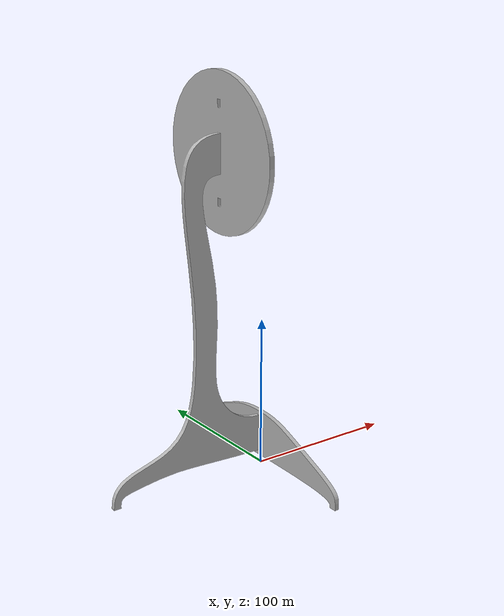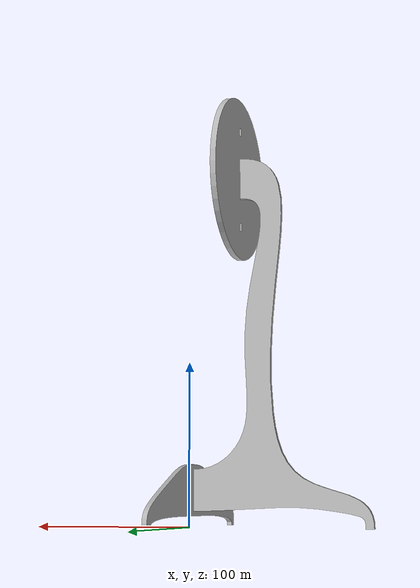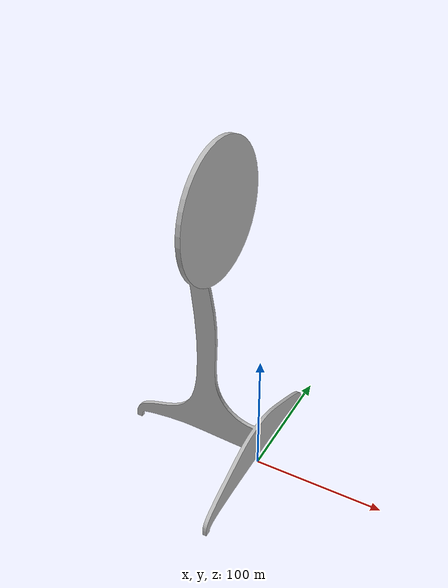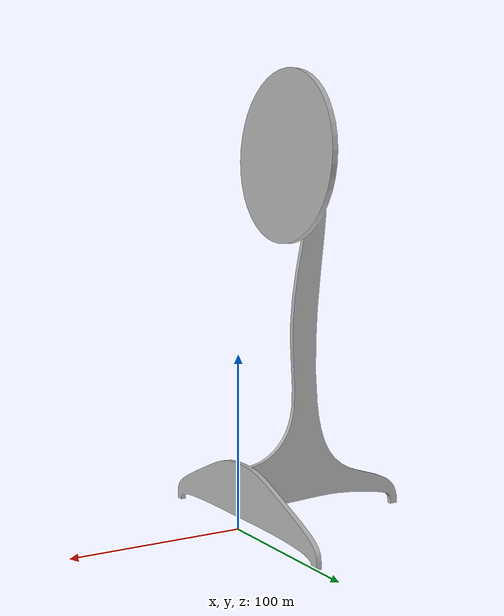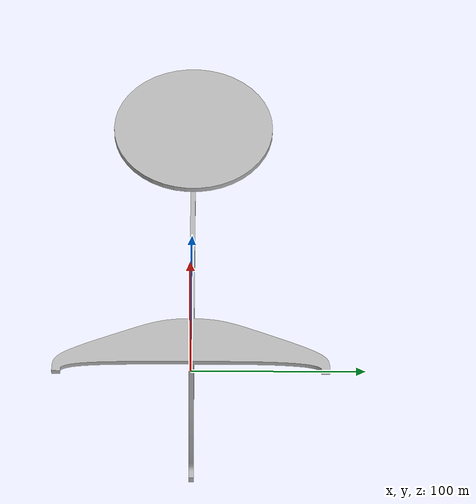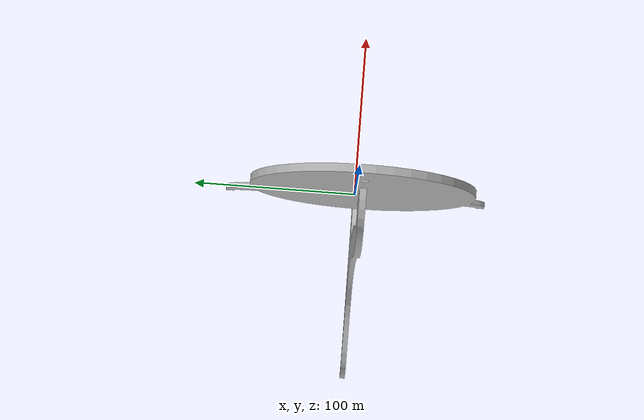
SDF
<?xml version="1.0"?>
<sdf version="1.5">
    <model name="Barred_area">
      <pose>0 0 0  0 0 0</pose>
      <static>true</static>
      <link name="body">
        <visual name="visual">
          <geometry>
            <mesh>
	      <uri>model://meshes/Barred_area.dae</uri>
	      <scale>1 1 1</scale>
	    </mesh>
          </geometry>
        </visual>
      </link>
    </model>
</sdf>
